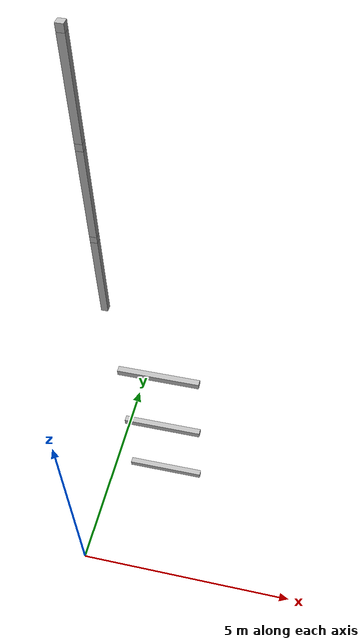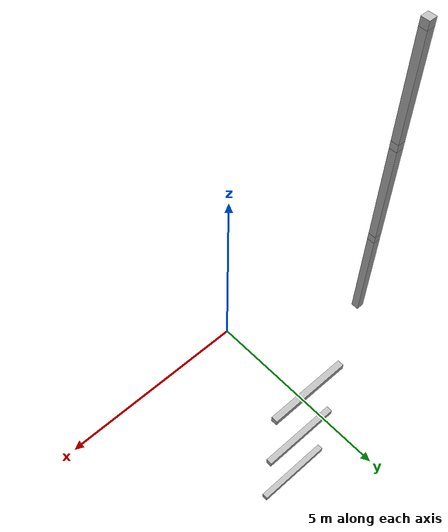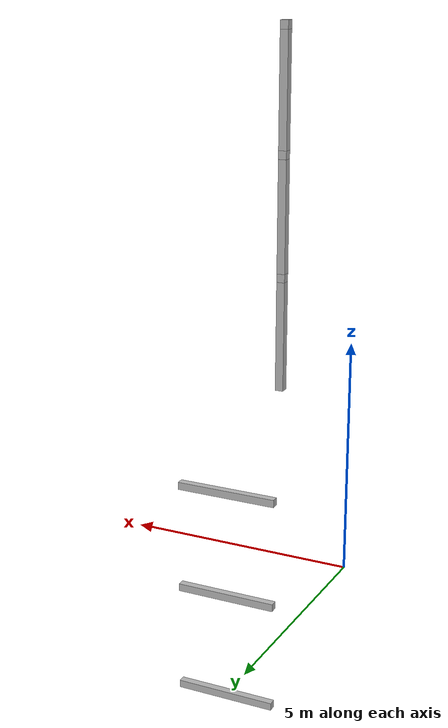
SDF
<sdf version="1.7">
 <world name="default">
  <model name="orthogonal_747_2.000.15_TS">
   <static>1</static>
   <link name="x_link_0_4_3">
    <inertial>
     <mass>1</mass>
     <inertia>
      <ixx>0.166667</ixx>
      <ixy>0</ixy>
      <ixz>0</ixz>
      <iyy>0.166667</iyy>
      <iyz>0</iyz>
      <izz>0.166667</izz>
     </inertia>
    </inertial>
    <pose>7.525 8.6 1.075 0 -0 0</pose>
    <visual name="visual_0">
     <laser_retro>687</laser_retro>
     <geometry><box><size>2 1e-06 0.15</size></box></geometry>
     <material>
      <script><name>Gazebo/Grey</name><uri>file://media/materials/scripts/gazebo.material</uri></script>
      <shader type="pixel"><normal_map>__default__</normal_map></shader>
      <ambient>0.678 0.498 0.659 1</ambient>
      <diffuse>0.7 0.7 0.7 1</diffuse>
      <specular>0.01 0.01 0.01 1</specular>
      <emissive>0 0 0 1</emissive>
     </material>
     <pose>0 -0.075 0 0 -0 0</pose>
     <transparency>1</transparency>
    </visual>
    <visual name="visual_1">
     <laser_retro>688</laser_retro>
     <geometry><box><size>2 1e-06 0.15</size></box></geometry>
     <material>
      <script><name>Gazebo/Grey</name><uri>file://media/materials/scripts/gazebo.material</uri></script>
      <shader type="pixel"><normal_map>__default__</normal_map></shader>
      <ambient>0.447 0.624 0.812 1</ambient>
      <diffuse>0.7 0.7 0.7 1</diffuse>
      <specular>0.01 0.01 0.01 1</specular>
      <emissive>0 0 0 1</emissive>
     </material>
     <pose>0 0.075 0 0 -0 0</pose>
     <transparency>1</transparency>
    </visual>
    <visual name="visual_2">
     <laser_retro>689</laser_retro>
     <geometry><box><size>2 0.15 1e-06</size></box></geometry>
     <material>
      <script><name>Gazebo/Grey</name><uri>file://media/materials/scripts/gazebo.material</uri></script>
      <shader type="pixel"><normal_map>__default__</normal_map></shader>
      <ambient>0.988 0.686 0.243 1</ambient>
      <diffuse>0.7 0.7 0.7 1</diffuse>
      <specular>0.01 0.01 0.01 1</specular>
      <emissive>0 0 0 1</emissive>
     </material>
     <pose>0 0 -0.075 0 -0 0</pose>
     <transparency>1</transparency>
    </visual>
    <visual name="visual_3">
     <laser_retro>690</laser_retro>
     <geometry><box><size>1e-06 0.15 0.15</size></box></geometry>
     <material>
      <script><name>Gazebo/Grey</name><uri>file://media/materials/scripts/gazebo.material</uri></script>
      <shader type="pixel"><normal_map>__default__</normal_map></shader>
      <ambient>0.988 0.914 0.31 1</ambient>
      <diffuse>0.7 0.7 0.7 1</diffuse>
      <specular>0.01 0.01 0.01 1</specular>
      <emissive>0 0 0 1</emissive>
     </material>
     <pose>1 0 0 0 -0 0</pose>
     <transparency>1</transparency>
    </visual>
    <visual name="visual_4">
     <laser_retro>691</laser_retro>
     <geometry><box><size>2 0.15 1e-06</size></box></geometry>
     <material>
      <script><name>Gazebo/Grey</name><uri>file://media/materials/scripts/gazebo.material</uri></script>
      <shader type="pixel"><normal_map>__default__</normal_map></shader>
      <ambient>0.937 0.161 0.161 1</ambient>
      <diffuse>0.7 0.7 0.7 1</diffuse>
      <specular>0.01 0.01 0.01 1</specular>
      <emissive>0 0 0 1</emissive>
     </material>
     <pose>0 0 0.075 0 -0 0</pose>
     <transparency>1</transparency>
    </visual>
    <visual name="visual_5">
     <laser_retro>692</laser_retro>
     <geometry><box><size>1e-06 0.15 0.15</size></box></geometry>
     <material>
      <script><name>Gazebo/Grey</name><uri>file://media/materials/scripts/gazebo.material</uri></script>
      <shader type="pixel"><normal_map>__default__</normal_map></shader>
      <ambient>0.541 0.886 0.204 1</ambient>
      <diffuse>0.7 0.7 0.7 1</diffuse>
      <specular>0.01 0.01 0.01 1</specular>
      <emissive>0 0 0 1</emissive>
     </material>
     <pose>-1 0 0 0 -0 0</pose>
     <transparency>1</transparency>
    </visual>
    <visual name="visual_texture">
     <geometry><box><size>1.9998 0.149985 0.149985</size></box></geometry>
     <material>
      <script>
       <uri>model://BASE_MODELS/simple_block_v2_textured/materials/scripts</uri>
       <uri>model://BASE_MODELS/simple_block_v2_textured/materials/textures</uri>
       <name>metal</name>
      </script>
     </material>
     <laser_retro>693</laser_retro>
    </visual>
    <collision name="collision">
     <geometry><box><size>2 0.15 0.15</size></box></geometry>
     <surface>
      <friction>
       <ode><mu>1</mu><mu2>1</mu2><fdir1>0 0 0</fdir1><slip1>0</slip1><slip2>0</slip2></ode>
       <torsional>
        <coefficient>1</coefficient>
        <patch_radius>0</patch_radius>
        <surface_radius>0</surface_radius>
        <use_patch_radius>1</use_patch_radius>
        <ode><slip>0</slip></ode>
       </torsional>
      </friction>
      <bounce><restitution_coefficient>0</restitution_coefficient><threshold>1e+06</threshold></bounce>
      <contact>
       <collide_without_contact>0</collide_without_contact>
       <collide_without_contact_bitmask>1</collide_without_contact_bitmask>
       <collide_bitmask>1</collide_bitmask>
       <ode>
        <soft_cfm>0</soft_cfm>
        <soft_erp>0.2</soft_erp>
        <kp>1e+13</kp>
        <kd>1</kd>
        <max_vel>0.01</max_vel>
        <min_depth>0</min_depth>
       </ode>
       <bullet>
        <split_impulse>1</split_impulse>
        <split_impulse_penetration_threshold>-0.01</split_impulse_penetration_threshold>
        <soft_cfm>0</soft_cfm>
        <soft_erp>0.2</soft_erp>
        <kp>1e+13</kp>
        <kd>1</kd>
       </bullet>
      </contact>
     </surface>
    </collision>
   </link>
   <link name="x_link_1_4_3">
    <inertial>
     <mass>1</mass>
     <inertia>
      <ixx>0.166667</ixx>
      <ixy>0</ixy>
      <ixz>0</ixz>
      <iyy>0.166667</iyy>
      <iyz>0</iyz>
      <izz>0.166667</izz>
     </inertia>
    </inertial>
    <pose>7.525 8.6 3.225 0 -0 0</pose>
    <visual name="visual_0">
     <laser_retro>1555</laser_retro>
     <geometry><box><size>2 1e-06 0.15</size></box></geometry>
     <material>
      <script><name>Gazebo/Grey</name><uri>file://media/materials/scripts/gazebo.material</uri></script>
      <shader type="pixel"><normal_map>__default__</normal_map></shader>
      <ambient>0.678 0.498 0.659 1</ambient>
      <diffuse>0.7 0.7 0.7 1</diffuse>
      <specular>0.01 0.01 0.01 1</specular>
      <emissive>0 0 0 1</emissive>
     </material>
     <pose>0 -0.075 0 0 -0 0</pose>
     <transparency>1</transparency>
    </visual>
    <visual name="visual_1">
     <laser_retro>1556</laser_retro>
     <geometry><box><size>2 1e-06 0.15</size></box></geometry>
     <material>
      <script><name>Gazebo/Grey</name><uri>file://media/materials/scripts/gazebo.material</uri></script>
      <shader type="pixel"><normal_map>__default__</normal_map></shader>
      <ambient>0.447 0.624 0.812 1</ambient>
      <diffuse>0.7 0.7 0.7 1</diffuse>
      <specular>0.01 0.01 0.01 1</specular>
      <emissive>0 0 0 1</emissive>
     </material>
     <pose>0 0.075 0 0 -0 0</pose>
     <transparency>1</transparency>
    </visual>
    <visual name="visual_2">
     <laser_retro>1557</laser_retro>
     <geometry><box><size>2 0.15 1e-06</size></box></geometry>
     <material>
      <script><name>Gazebo/Grey</name><uri>file://media/materials/scripts/gazebo.material</uri></script>
      <shader type="pixel"><normal_map>__default__</normal_map></shader>
      <ambient>0.988 0.686 0.243 1</ambient>
      <diffuse>0.7 0.7 0.7 1</diffuse>
      <specular>0.01 0.01 0.01 1</specular>
      <emissive>0 0 0 1</emissive>
     </material>
     <pose>0 0 -0.075 0 -0 0</pose>
     <transparency>1</transparency>
    </visual>
    <visual name="visual_3">
     <laser_retro>1558</laser_retro>
     <geometry><box><size>1e-06 0.15 0.15</size></box></geometry>
     <material>
      <script><name>Gazebo/Grey</name><uri>file://media/materials/scripts/gazebo.material</uri></script>
      <shader type="pixel"><normal_map>__default__</normal_map></shader>
      <ambient>0.988 0.914 0.31 1</ambient>
      <diffuse>0.7 0.7 0.7 1</diffuse>
      <specular>0.01 0.01 0.01 1</specular>
      <emissive>0 0 0 1</emissive>
     </material>
     <pose>1 0 0 0 -0 0</pose>
     <transparency>1</transparency>
    </visual>
    <visual name="visual_4">
     <laser_retro>1559</laser_retro>
     <geometry><box><size>2 0.15 1e-06</size></box></geometry>
     <material>
      <script><name>Gazebo/Grey</name><uri>file://media/materials/scripts/gazebo.material</uri></script>
      <shader type="pixel"><normal_map>__default__</normal_map></shader>
      <ambient>0.937 0.161 0.161 1</ambient>
      <diffuse>0.7 0.7 0.7 1</diffuse>
      <specular>0.01 0.01 0.01 1</specular>
      <emissive>0 0 0 1</emissive>
     </material>
     <pose>0 0 0.075 0 -0 0</pose>
     <transparency>1</transparency>
    </visual>
    <visual name="visual_5">
     <laser_retro>1560</laser_retro>
     <geometry><box><size>1e-06 0.15 0.15</size></box></geometry>
     <material>
      <script><name>Gazebo/Grey</name><uri>file://media/materials/scripts/gazebo.material</uri></script>
      <shader type="pixel"><normal_map>__default__</normal_map></shader>
      <ambient>0.541 0.886 0.204 1</ambient>
      <diffuse>0.7 0.7 0.7 1</diffuse>
      <specular>0.01 0.01 0.01 1</specular>
      <emissive>0 0 0 1</emissive>
     </material>
     <pose>-1 0 0 0 -0 0</pose>
     <transparency>1</transparency>
    </visual>
    <visual name="visual_texture">
     <geometry><box><size>1.9998 0.149985 0.149985</size></box></geometry>
     <material>
      <script>
       <uri>model://BASE_MODELS/simple_block_v2_textured/materials/scripts</uri>
       <uri>model://BASE_MODELS/simple_block_v2_textured/materials/textures</uri>
       <name>metal</name>
      </script>
     </material>
     <laser_retro>1561</laser_retro>
    </visual>
    <collision name="collision">
     <geometry><box><size>2 0.15 0.15</size></box></geometry>
     <surface>
      <friction>
       <ode><mu>1</mu><mu2>1</mu2><fdir1>0 0 0</fdir1><slip1>0</slip1><slip2>0</slip2></ode>
       <torsional>
        <coefficient>1</coefficient>
        <patch_radius>0</patch_radius>
        <surface_radius>0</surface_radius>
        <use_patch_radius>1</use_patch_radius>
        <ode><slip>0</slip></ode>
       </torsional>
      </friction>
      <bounce><restitution_coefficient>0</restitution_coefficient><threshold>1e+06</threshold></bounce>
      <contact>
       <collide_without_contact>0</collide_without_contact>
       <collide_without_contact_bitmask>1</collide_without_contact_bitmask>
       <collide_bitmask>1</collide_bitmask>
       <ode>
        <soft_cfm>0</soft_cfm>
        <soft_erp>0.2</soft_erp>
        <kp>1e+13</kp>
        <kd>1</kd>
        <max_vel>0.01</max_vel>
        <min_depth>0</min_depth>
       </ode>
       <bullet>
        <split_impulse>1</split_impulse>
        <split_impulse_penetration_threshold>-0.01</split_impulse_penetration_threshold>
        <soft_cfm>0</soft_cfm>
        <soft_erp>0.2</soft_erp>
        <kp>1e+13</kp>
        <kd>1</kd>
       </bullet>
      </contact>
     </surface>
    </collision>
   </link>
   <link name="x_link_2_4_3">
    <inertial>
     <mass>1</mass>
     <inertia>
      <ixx>0.166667</ixx>
      <ixy>0</ixy>
      <ixz>0</ixz>
      <iyy>0.166667</iyy>
      <iyz>0</iyz>
      <izz>0.166667</izz>
     </inertia>
    </inertial>
    <pose>7.525 8.6 5.375 0 -0 0</pose>
    <visual name="visual_0">
     <laser_retro>2458</laser_retro>
     <geometry><box><size>2 1e-06 0.15</size></box></geometry>
     <material>
      <script><name>Gazebo/Grey</name><uri>file://media/materials/scripts/gazebo.material</uri></script>
      <shader type="pixel"><normal_map>__default__</normal_map></shader>
      <ambient>0.678 0.498 0.659 1</ambient>
      <diffuse>0.7 0.7 0.7 1</diffuse>
      <specular>0.01 0.01 0.01 1</specular>
      <emissive>0 0 0 1</emissive>
     </material>
     <pose>0 -0.075 0 0 -0 0</pose>
     <transparency>1</transparency>
    </visual>
    <visual name="visual_1">
     <laser_retro>2459</laser_retro>
     <geometry><box><size>2 1e-06 0.15</size></box></geometry>
     <material>
      <script><name>Gazebo/Grey</name><uri>file://media/materials/scripts/gazebo.material</uri></script>
      <shader type="pixel"><normal_map>__default__</normal_map></shader>
      <ambient>0.447 0.624 0.812 1</ambient>
      <diffuse>0.7 0.7 0.7 1</diffuse>
      <specular>0.01 0.01 0.01 1</specular>
      <emissive>0 0 0 1</emissive>
     </material>
     <pose>0 0.075 0 0 -0 0</pose>
     <transparency>1</transparency>
    </visual>
    <visual name="visual_2">
     <laser_retro>2460</laser_retro>
     <geometry><box><size>2 0.15 1e-06</size></box></geometry>
     <material>
      <script><name>Gazebo/Grey</name><uri>file://media/materials/scripts/gazebo.material</uri></script>
      <shader type="pixel"><normal_map>__default__</normal_map></shader>
      <ambient>0.988 0.686 0.243 1</ambient>
      <diffuse>0.7 0.7 0.7 1</diffuse>
      <specular>0.01 0.01 0.01 1</specular>
      <emissive>0 0 0 1</emissive>
     </material>
     <pose>0 0 -0.075 0 -0 0</pose>
     <transparency>1</transparency>
    </visual>
    <visual name="visual_3">
     <laser_retro>2461</laser_retro>
     <geometry><box><size>1e-06 0.15 0.15</size></box></geometry>
     <material>
      <script><name>Gazebo/Grey</name><uri>file://media/materials/scripts/gazebo.material</uri></script>
      <shader type="pixel"><normal_map>__default__</normal_map></shader>
      <ambient>0.988 0.914 0.31 1</ambient>
      <diffuse>0.7 0.7 0.7 1</diffuse>
      <specular>0.01 0.01 0.01 1</specular>
      <emissive>0 0 0 1</emissive>
     </material>
     <pose>1 0 0 0 -0 0</pose>
     <transparency>1</transparency>
    </visual>
    <visual name="visual_4">
     <laser_retro>2462</laser_retro>
     <geometry><box><size>2 0.15 1e-06</size></box></geometry>
     <material>
      <script><name>Gazebo/Grey</name><uri>file://media/materials/scripts/gazebo.material</uri></script>
      <shader type="pixel"><normal_map>__default__</normal_map></shader>
      <ambient>0.937 0.161 0.161 1</ambient>
      <diffuse>0.7 0.7 0.7 1</diffuse>
      <specular>0.01 0.01 0.01 1</specular>
      <emissive>0 0 0 1</emissive>
     </material>
     <pose>0 0 0.075 0 -0 0</pose>
     <transparency>1</transparency>
    </visual>
    <visual name="visual_5">
     <laser_retro>2463</laser_retro>
     <geometry><box><size>1e-06 0.15 0.15</size></box></geometry>
     <material>
      <script><name>Gazebo/Grey</name><uri>file://media/materials/scripts/gazebo.material</uri></script>
      <shader type="pixel"><normal_map>__default__</normal_map></shader>
      <ambient>0.541 0.886 0.204 1</ambient>
      <diffuse>0.7 0.7 0.7 1</diffuse>
      <specular>0.01 0.01 0.01 1</specular>
      <emissive>0 0 0 1</emissive>
     </material>
     <pose>-1 0 0 0 -0 0</pose>
     <transparency>1</transparency>
    </visual>
    <visual name="visual_texture">
     <geometry><box><size>1.9998 0.149985 0.149985</size></box></geometry>
     <material>
      <script>
       <uri>model://BASE_MODELS/simple_block_v2_textured/materials/scripts</uri>
       <uri>model://BASE_MODELS/simple_block_v2_textured/materials/textures</uri>
       <name>metal</name>
      </script>
     </material>
     <laser_retro>2464</laser_retro>
    </visual>
    <collision name="collision">
     <geometry><box><size>2 0.15 0.15</size></box></geometry>
     <surface>
      <friction>
       <ode><mu>1</mu><mu2>1</mu2><fdir1>0 0 0</fdir1><slip1>0</slip1><slip2>0</slip2></ode>
       <torsional>
        <coefficient>1</coefficient>
        <patch_radius>0</patch_radius>
        <surface_radius>0</surface_radius>
        <use_patch_radius>1</use_patch_radius>
        <ode><slip>0</slip></ode>
       </torsional>
      </friction>
      <bounce><restitution_coefficient>0</restitution_coefficient><threshold>1e+06</threshold></bounce>
      <contact>
       <collide_without_contact>0</collide_without_contact>
       <collide_without_contact_bitmask>1</collide_without_contact_bitmask>
       <collide_bitmask>1</collide_bitmask>
       <ode>
        <soft_cfm>0</soft_cfm>
        <soft_erp>0.2</soft_erp>
        <kp>1e+13</kp>
        <kd>1</kd>
        <max_vel>0.01</max_vel>
        <min_depth>0</min_depth>
       </ode>
       <bullet>
        <split_impulse>1</split_impulse>
        <split_impulse_penetration_threshold>-0.01</split_impulse_penetration_threshold>
        <soft_cfm>0</soft_cfm>
        <soft_erp>0.2</soft_erp>
        <kp>1e+13</kp>
        <kd>1</kd>
       </bullet>
      </contact>
     </surface>
    </collision>
   </link>
   <link name="u_link_4_4_3">
    <inertial>
     <mass>1</mass>
     <inertia>
      <ixx>0.166667</ixx>
      <ixy>0</ixy>
      <ixz>0</ixz>
      <iyy>0.166667</iyy>
      <iyz>0</iyz>
      <izz>0.166667</izz>
     </inertia>
    </inertial>
    <pose>6.45 8.6 9.675 0 -0 0</pose>
    <visual name="visual_0">
     <laser_retro>4271</laser_retro>
     <geometry><box><size>0.15 1e-06 0.15</size></box></geometry>
     <material>
      <script><name>Gazebo/Grey</name><uri>file://media/materials/scripts/gazebo.material</uri></script>
      <shader type="pixel"><normal_map>__default__</normal_map></shader>
      <ambient>0.678 0.498 0.659 1</ambient>
      <diffuse>0.7 0.7 0.7 1</diffuse>
      <specular>0.01 0.01 0.01 1</specular>
      <emissive>0 0 0 1</emissive>
     </material>
     <pose>0 -0.075 0 0 -0 0</pose>
     <transparency>1</transparency>
    </visual>
    <visual name="visual_1">
     <laser_retro>4272</laser_retro>
     <geometry><box><size>0.15 1e-06 0.15</size></box></geometry>
     <material>
      <script><name>Gazebo/Grey</name><uri>file://media/materials/scripts/gazebo.material</uri></script>
      <shader type="pixel"><normal_map>__default__</normal_map></shader>
      <ambient>0.447 0.624 0.812 1</ambient>
      <diffuse>0.7 0.7 0.7 1</diffuse>
      <specular>0.01 0.01 0.01 1</specular>
      <emissive>0 0 0 1</emissive>
     </material>
     <pose>0 0.075 0 0 -0 0</pose>
     <transparency>1</transparency>
    </visual>
    <visual name="visual_2">
     <laser_retro>4273</laser_retro>
     <geometry><box><size>0.15 0.15 1e-06</size></box></geometry>
     <material>
      <script><name>Gazebo/Grey</name><uri>file://media/materials/scripts/gazebo.material</uri></script>
      <shader type="pixel"><normal_map>__default__</normal_map></shader>
      <ambient>0.988 0.686 0.243 1</ambient>
      <diffuse>0.7 0.7 0.7 1</diffuse>
      <specular>0.01 0.01 0.01 1</specular>
      <emissive>0 0 0 1</emissive>
     </material>
     <pose>0 0 -0.075 0 -0 0</pose>
     <transparency>1</transparency>
    </visual>
    <visual name="visual_3">
     <laser_retro>4274</laser_retro>
     <geometry><box><size>1e-06 0.15 0.15</size></box></geometry>
     <material>
      <script><name>Gazebo/Grey</name><uri>file://media/materials/scripts/gazebo.material</uri></script>
      <shader type="pixel"><normal_map>__default__</normal_map></shader>
      <ambient>0.988 0.914 0.31 1</ambient>
      <diffuse>0.7 0.7 0.7 1</diffuse>
      <specular>0.01 0.01 0.01 1</specular>
      <emissive>0 0 0 1</emissive>
     </material>
     <pose>0.075 0 0 0 -0 0</pose>
     <transparency>1</transparency>
    </visual>
    <visual name="visual_4">
     <laser_retro>4275</laser_retro>
     <geometry><box><size>0.15 0.15 1e-06</size></box></geometry>
     <material>
      <script><name>Gazebo/Grey</name><uri>file://media/materials/scripts/gazebo.material</uri></script>
      <shader type="pixel"><normal_map>__default__</normal_map></shader>
      <ambient>0.937 0.161 0.161 1</ambient>
      <diffuse>0.7 0.7 0.7 1</diffuse>
      <specular>0.01 0.01 0.01 1</specular>
      <emissive>0 0 0 1</emissive>
     </material>
     <pose>0 0 0.075 0 -0 0</pose>
     <transparency>1</transparency>
    </visual>
    <visual name="visual_5">
     <laser_retro>4276</laser_retro>
     <geometry><box><size>1e-06 0.15 0.15</size></box></geometry>
     <material>
      <script><name>Gazebo/Grey</name><uri>file://media/materials/scripts/gazebo.material</uri></script>
      <shader type="pixel"><normal_map>__default__</normal_map></shader>
      <ambient>0.541 0.886 0.204 1</ambient>
      <diffuse>0.7 0.7 0.7 1</diffuse>
      <specular>0.01 0.01 0.01 1</specular>
      <emissive>0 0 0 1</emissive>
     </material>
     <pose>-0.075 0 0 0 -0 0</pose>
     <transparency>1</transparency>
    </visual>
    <visual name="visual_texture">
     <geometry><box><size>0.149985 0.149985 0.149985</size></box></geometry>
     <material>
      <script>
       <uri>model://BASE_MODELS/simple_block_v2_textured/materials/scripts</uri>
       <uri>model://BASE_MODELS/simple_block_v2_textured/materials/textures</uri>
       <name>metal</name>
      </script>
     </material>
     <laser_retro>4277</laser_retro>
    </visual>
    <collision name="collision">
     <geometry><box><size>0.15 0.15 0.15</size></box></geometry>
     <surface>
      <friction>
       <ode><mu>1</mu><mu2>1</mu2><fdir1>0 0 0</fdir1><slip1>0</slip1><slip2>0</slip2></ode>
       <torsional>
        <coefficient>1</coefficient>
        <patch_radius>0</patch_radius>
        <surface_radius>0</surface_radius>
        <use_patch_radius>1</use_patch_radius>
        <ode><slip>0</slip></ode>
       </torsional>
      </friction>
      <bounce><restitution_coefficient>0</restitution_coefficient><threshold>1e+06</threshold></bounce>
      <contact>
       <collide_without_contact>0</collide_without_contact>
       <collide_without_contact_bitmask>1</collide_without_contact_bitmask>
       <collide_bitmask>1</collide_bitmask>
       <ode>
        <soft_cfm>0</soft_cfm>
        <soft_erp>0.2</soft_erp>
        <kp>1e+13</kp>
        <kd>1</kd>
        <max_vel>0.01</max_vel>
        <min_depth>0</min_depth>
       </ode>
       <bullet>
        <split_impulse>1</split_impulse>
        <split_impulse_penetration_threshold>-0.01</split_impulse_penetration_threshold>
        <soft_cfm>0</soft_cfm>
        <soft_erp>0.2</soft_erp>
        <kp>1e+13</kp>
        <kd>1</kd>
       </bullet>
      </contact>
     </surface>
    </collision>
   </link>
   <link name="z_link_4_4_3">
    <inertial>
     <mass>1</mass>
     <inertia>
      <ixx>0.166667</ixx>
      <ixy>0</ixy>
      <ixz>0</ixz>
      <iyy>0.166667</iyy>
      <iyz>0</iyz>
      <izz>0.166667</izz>
     </inertia>
    </inertial>
    <pose>6.45 8.6 8.6 0 -0 0</pose>
    <visual name="visual_0">
     <laser_retro>4278</laser_retro>
     <geometry><box><size>0.15 1e-06 2</size></box></geometry>
     <material>
      <script><name>Gazebo/Grey</name><uri>file://media/materials/scripts/gazebo.material</uri></script>
      <shader type="pixel"><normal_map>__default__</normal_map></shader>
      <ambient>0.678 0.498 0.659 1</ambient>
      <diffuse>0.7 0.7 0.7 1</diffuse>
      <specular>0.01 0.01 0.01 1</specular>
      <emissive>0 0 0 1</emissive>
     </material>
     <pose>0 -0.075 0 0 -0 0</pose>
     <transparency>1</transparency>
    </visual>
    <visual name="visual_1">
     <laser_retro>4279</laser_retro>
     <geometry><box><size>0.15 1e-06 2</size></box></geometry>
     <material>
      <script><name>Gazebo/Grey</name><uri>file://media/materials/scripts/gazebo.material</uri></script>
      <shader type="pixel"><normal_map>__default__</normal_map></shader>
      <ambient>0.447 0.624 0.812 1</ambient>
      <diffuse>0.7 0.7 0.7 1</diffuse>
      <specular>0.01 0.01 0.01 1</specular>
      <emissive>0 0 0 1</emissive>
     </material>
     <pose>0 0.075 0 0 -0 0</pose>
     <transparency>1</transparency>
    </visual>
    <visual name="visual_2">
     <laser_retro>4280</laser_retro>
     <geometry><box><size>0.15 0.15 1e-06</size></box></geometry>
     <material>
      <script><name>Gazebo/Grey</name><uri>file://media/materials/scripts/gazebo.material</uri></script>
      <shader type="pixel"><normal_map>__default__</normal_map></shader>
      <ambient>0.988 0.686 0.243 1</ambient>
      <diffuse>0.7 0.7 0.7 1</diffuse>
      <specular>0.01 0.01 0.01 1</specular>
      <emissive>0 0 0 1</emissive>
     </material>
     <pose>0 0 -1 0 -0 0</pose>
     <transparency>1</transparency>
    </visual>
    <visual name="visual_3">
     <laser_retro>4281</laser_retro>
     <geometry><box><size>1e-06 0.15 2</size></box></geometry>
     <material>
      <script><name>Gazebo/Grey</name><uri>file://media/materials/scripts/gazebo.material</uri></script>
      <shader type="pixel"><normal_map>__default__</normal_map></shader>
      <ambient>0.988 0.914 0.31 1</ambient>
      <diffuse>0.7 0.7 0.7 1</diffuse>
      <specular>0.01 0.01 0.01 1</specular>
      <emissive>0 0 0 1</emissive>
     </material>
     <pose>0.075 0 0 0 -0 0</pose>
     <transparency>1</transparency>
    </visual>
    <visual name="visual_4">
     <laser_retro>4282</laser_retro>
     <geometry><box><size>0.15 0.15 1e-06</size></box></geometry>
     <material>
      <script><name>Gazebo/Grey</name><uri>file://media/materials/scripts/gazebo.material</uri></script>
      <shader type="pixel"><normal_map>__default__</normal_map></shader>
      <ambient>0.937 0.161 0.161 1</ambient>
      <diffuse>0.7 0.7 0.7 1</diffuse>
      <specular>0.01 0.01 0.01 1</specular>
      <emissive>0 0 0 1</emissive>
     </material>
     <pose>0 0 1 0 -0 0</pose>
     <transparency>1</transparency>
    </visual>
    <visual name="visual_5">
     <laser_retro>4283</laser_retro>
     <geometry><box><size>1e-06 0.15 2</size></box></geometry>
     <material>
      <script><name>Gazebo/Grey</name><uri>file://media/materials/scripts/gazebo.material</uri></script>
      <shader type="pixel"><normal_map>__default__</normal_map></shader>
      <ambient>0.541 0.886 0.204 1</ambient>
      <diffuse>0.7 0.7 0.7 1</diffuse>
      <specular>0.01 0.01 0.01 1</specular>
      <emissive>0 0 0 1</emissive>
     </material>
     <pose>-0.075 0 0 0 -0 0</pose>
     <transparency>1</transparency>
    </visual>
    <visual name="visual_texture">
     <geometry><box><size>0.149985 0.149985 1.9998</size></box></geometry>
     <material>
      <script>
       <uri>model://BASE_MODELS/simple_block_v2_textured/materials/scripts</uri>
       <uri>model://BASE_MODELS/simple_block_v2_textured/materials/textures</uri>
       <name>metal</name>
      </script>
     </material>
     <laser_retro>4284</laser_retro>
    </visual>
    <collision name="collision">
     <geometry><box><size>0.15 0.15 2</size></box></geometry>
     <surface>
      <friction>
       <ode><mu>1</mu><mu2>1</mu2><fdir1>0 0 0</fdir1><slip1>0</slip1><slip2>0</slip2></ode>
       <torsional>
        <coefficient>1</coefficient>
        <patch_radius>0</patch_radius>
        <surface_radius>0</surface_radius>
        <use_patch_radius>1</use_patch_radius>
        <ode><slip>0</slip></ode>
       </torsional>
      </friction>
      <bounce><restitution_coefficient>0</restitution_coefficient><threshold>1e+06</threshold></bounce>
      <contact>
       <collide_without_contact>0</collide_without_contact>
       <collide_without_contact_bitmask>1</collide_without_contact_bitmask>
       <collide_bitmask>1</collide_bitmask>
       <ode>
        <soft_cfm>0</soft_cfm>
        <soft_erp>0.2</soft_erp>
        <kp>1e+13</kp>
        <kd>1</kd>
        <max_vel>0.01</max_vel>
        <min_depth>0</min_depth>
       </ode>
       <bullet>
        <split_impulse>1</split_impulse>
        <split_impulse_penetration_threshold>-0.01</split_impulse_penetration_threshold>
        <soft_cfm>0</soft_cfm>
        <soft_erp>0.2</soft_erp>
        <kp>1e+13</kp>
        <kd>1</kd>
       </bullet>
      </contact>
     </surface>
    </collision>
   </link>
   <link name="u_link_5_4_3">
    <inertial>
     <mass>1</mass>
     <inertia>
      <ixx>0.166667</ixx>
      <ixy>0</ixy>
      <ixz>0</ixz>
      <iyy>0.166667</iyy>
      <iyz>0</iyz>
      <izz>0.166667</izz>
     </inertia>
    </inertial>
    <pose>6.45 8.6 11.825 0 -0 0</pose>
    <visual name="visual_0">
     <laser_retro>5174</laser_retro>
     <geometry><box><size>0.15 1e-06 0.15</size></box></geometry>
     <material>
      <script><name>Gazebo/Grey</name><uri>file://media/materials/scripts/gazebo.material</uri></script>
      <shader type="pixel"><normal_map>__default__</normal_map></shader>
      <ambient>0.678 0.498 0.659 1</ambient>
      <diffuse>0.7 0.7 0.7 1</diffuse>
      <specular>0.01 0.01 0.01 1</specular>
      <emissive>0 0 0 1</emissive>
     </material>
     <pose>0 -0.075 0 0 -0 0</pose>
     <transparency>1</transparency>
    </visual>
    <visual name="visual_1">
     <laser_retro>5175</laser_retro>
     <geometry><box><size>0.15 1e-06 0.15</size></box></geometry>
     <material>
      <script><name>Gazebo/Grey</name><uri>file://media/materials/scripts/gazebo.material</uri></script>
      <shader type="pixel"><normal_map>__default__</normal_map></shader>
      <ambient>0.447 0.624 0.812 1</ambient>
      <diffuse>0.7 0.7 0.7 1</diffuse>
      <specular>0.01 0.01 0.01 1</specular>
      <emissive>0 0 0 1</emissive>
     </material>
     <pose>0 0.075 0 0 -0 0</pose>
     <transparency>1</transparency>
    </visual>
    <visual name="visual_2">
     <laser_retro>5176</laser_retro>
     <geometry><box><size>0.15 0.15 1e-06</size></box></geometry>
     <material>
      <script><name>Gazebo/Grey</name><uri>file://media/materials/scripts/gazebo.material</uri></script>
      <shader type="pixel"><normal_map>__default__</normal_map></shader>
      <ambient>0.988 0.686 0.243 1</ambient>
      <diffuse>0.7 0.7 0.7 1</diffuse>
      <specular>0.01 0.01 0.01 1</specular>
      <emissive>0 0 0 1</emissive>
     </material>
     <pose>0 0 -0.075 0 -0 0</pose>
     <transparency>1</transparency>
    </visual>
    <visual name="visual_3">
     <laser_retro>5177</laser_retro>
     <geometry><box><size>1e-06 0.15 0.15</size></box></geometry>
     <material>
      <script><name>Gazebo/Grey</name><uri>file://media/materials/scripts/gazebo.material</uri></script>
      <shader type="pixel"><normal_map>__default__</normal_map></shader>
      <ambient>0.988 0.914 0.31 1</ambient>
      <diffuse>0.7 0.7 0.7 1</diffuse>
      <specular>0.01 0.01 0.01 1</specular>
      <emissive>0 0 0 1</emissive>
     </material>
     <pose>0.075 0 0 0 -0 0</pose>
     <transparency>1</transparency>
    </visual>
    <visual name="visual_4">
     <laser_retro>5178</laser_retro>
     <geometry><box><size>0.15 0.15 1e-06</size></box></geometry>
     <material>
      <script><name>Gazebo/Grey</name><uri>file://media/materials/scripts/gazebo.material</uri></script>
      <shader type="pixel"><normal_map>__default__</normal_map></shader>
      <ambient>0.937 0.161 0.161 1</ambient>
      <diffuse>0.7 0.7 0.7 1</diffuse>
      <specular>0.01 0.01 0.01 1</specular>
      <emissive>0 0 0 1</emissive>
     </material>
     <pose>0 0 0.075 0 -0 0</pose>
     <transparency>1</transparency>
    </visual>
    <visual name="visual_5">
     <laser_retro>5179</laser_retro>
     <geometry><box><size>1e-06 0.15 0.15</size></box></geometry>
     <material>
      <script><name>Gazebo/Grey</name><uri>file://media/materials/scripts/gazebo.material</uri></script>
      <shader type="pixel"><normal_map>__default__</normal_map></shader>
      <ambient>0.541 0.886 0.204 1</ambient>
      <diffuse>0.7 0.7 0.7 1</diffuse>
      <specular>0.01 0.01 0.01 1</specular>
      <emissive>0 0 0 1</emissive>
     </material>
     <pose>-0.075 0 0 0 -0 0</pose>
     <transparency>1</transparency>
    </visual>
    <visual name="visual_texture">
     <geometry><box><size>0.149985 0.149985 0.149985</size></box></geometry>
     <material>
      <script>
       <uri>model://BASE_MODELS/simple_block_v2_textured/materials/scripts</uri>
       <uri>model://BASE_MODELS/simple_block_v2_textured/materials/textures</uri>
       <name>metal</name>
      </script>
     </material>
     <laser_retro>5180</laser_retro>
    </visual>
    <collision name="collision">
     <geometry><box><size>0.15 0.15 0.15</size></box></geometry>
     <surface>
      <friction>
       <ode><mu>1</mu><mu2>1</mu2><fdir1>0 0 0</fdir1><slip1>0</slip1><slip2>0</slip2></ode>
       <torsional>
        <coefficient>1</coefficient>
        <patch_radius>0</patch_radius>
        <surface_radius>0</surface_radius>
        <use_patch_radius>1</use_patch_radius>
        <ode><slip>0</slip></ode>
       </torsional>
      </friction>
      <bounce><restitution_coefficient>0</restitution_coefficient><threshold>1e+06</threshold></bounce>
      <contact>
       <collide_without_contact>0</collide_without_contact>
       <collide_without_contact_bitmask>1</collide_without_contact_bitmask>
       <collide_bitmask>1</collide_bitmask>
       <ode>
        <soft_cfm>0</soft_cfm>
        <soft_erp>0.2</soft_erp>
        <kp>1e+13</kp>
        <kd>1</kd>
        <max_vel>0.01</max_vel>
        <min_depth>0</min_depth>
       </ode>
       <bullet>
        <split_impulse>1</split_impulse>
        <split_impulse_penetration_threshold>-0.01</split_impulse_penetration_threshold>
        <soft_cfm>0</soft_cfm>
        <soft_erp>0.2</soft_erp>
        <kp>1e+13</kp>
        <kd>1</kd>
       </bullet>
      </contact>
     </surface>
    </collision>
   </link>
   <link name="z_link_5_4_3">
    <inertial>
     <mass>1</mass>
     <inertia>
      <ixx>0.166667</ixx>
      <ixy>0</ixy>
      <ixz>0</ixz>
      <iyy>0.166667</iyy>
      <iyz>0</iyz>
      <izz>0.166667</izz>
     </inertia>
    </inertial>
    <pose>6.45 8.6 10.75 0 -0 0</pose>
    <visual name="visual_0">
     <laser_retro>5181</laser_retro>
     <geometry><box><size>0.15 1e-06 2</size></box></geometry>
     <material>
      <script><name>Gazebo/Grey</name><uri>file://media/materials/scripts/gazebo.material</uri></script>
      <shader type="pixel"><normal_map>__default__</normal_map></shader>
      <ambient>0.678 0.498 0.659 1</ambient>
      <diffuse>0.7 0.7 0.7 1</diffuse>
      <specular>0.01 0.01 0.01 1</specular>
      <emissive>0 0 0 1</emissive>
     </material>
     <pose>0 -0.075 0 0 -0 0</pose>
     <transparency>1</transparency>
    </visual>
    <visual name="visual_1">
     <laser_retro>5182</laser_retro>
     <geometry><box><size>0.15 1e-06 2</size></box></geometry>
     <material>
      <script><name>Gazebo/Grey</name><uri>file://media/materials/scripts/gazebo.material</uri></script>
      <shader type="pixel"><normal_map>__default__</normal_map></shader>
      <ambient>0.447 0.624 0.812 1</ambient>
      <diffuse>0.7 0.7 0.7 1</diffuse>
      <specular>0.01 0.01 0.01 1</specular>
      <emissive>0 0 0 1</emissive>
     </material>
     <pose>0 0.075 0 0 -0 0</pose>
     <transparency>1</transparency>
    </visual>
    <visual name="visual_2">
     <laser_retro>5183</laser_retro>
     <geometry><box><size>0.15 0.15 1e-06</size></box></geometry>
     <material>
      <script><name>Gazebo/Grey</name><uri>file://media/materials/scripts/gazebo.material</uri></script>
      <shader type="pixel"><normal_map>__default__</normal_map></shader>
      <ambient>0.988 0.686 0.243 1</ambient>
      <diffuse>0.7 0.7 0.7 1</diffuse>
      <specular>0.01 0.01 0.01 1</specular>
      <emissive>0 0 0 1</emissive>
     </material>
     <pose>0 0 -1 0 -0 0</pose>
     <transparency>1</transparency>
    </visual>
    <visual name="visual_3">
     <laser_retro>5184</laser_retro>
     <geometry><box><size>1e-06 0.15 2</size></box></geometry>
     <material>
      <script><name>Gazebo/Grey</name><uri>file://media/materials/scripts/gazebo.material</uri></script>
      <shader type="pixel"><normal_map>__default__</normal_map></shader>
      <ambient>0.988 0.914 0.31 1</ambient>
      <diffuse>0.7 0.7 0.7 1</diffuse>
      <specular>0.01 0.01 0.01 1</specular>
      <emissive>0 0 0 1</emissive>
     </material>
     <pose>0.075 0 0 0 -0 0</pose>
     <transparency>1</transparency>
    </visual>
    <visual name="visual_4">
     <laser_retro>5185</laser_retro>
     <geometry><box><size>0.15 0.15 1e-06</size></box></geometry>
     <material>
      <script><name>Gazebo/Grey</name><uri>file://media/materials/scripts/gazebo.material</uri></script>
      <shader type="pixel"><normal_map>__default__</normal_map></shader>
      <ambient>0.937 0.161 0.161 1</ambient>
      <diffuse>0.7 0.7 0.7 1</diffuse>
      <specular>0.01 0.01 0.01 1</specular>
      <emissive>0 0 0 1</emissive>
     </material>
     <pose>0 0 1 0 -0 0</pose>
     <transparency>1</transparency>
    </visual>
    <visual name="visual_5">
     <laser_retro>5186</laser_retro>
     <geometry><box><size>1e-06 0.15 2</size></box></geometry>
     <material>
      <script><name>Gazebo/Grey</name><uri>file://media/materials/scripts/gazebo.material</uri></script>
      <shader type="pixel"><normal_map>__default__</normal_map></shader>
      <ambient>0.541 0.886 0.204 1</ambient>
      <diffuse>0.7 0.7 0.7 1</diffuse>
      <specular>0.01 0.01 0.01 1</specular>
      <emissive>0 0 0 1</emissive>
     </material>
     <pose>-0.075 0 0 0 -0 0</pose>
     <transparency>1</transparency>
    </visual>
    <visual name="visual_texture">
     <geometry><box><size>0.149985 0.149985 1.9998</size></box></geometry>
     <material>
      <script>
       <uri>model://BASE_MODELS/simple_block_v2_textured/materials/scripts</uri>
       <uri>model://BASE_MODELS/simple_block_v2_textured/materials/textures</uri>
       <name>metal</name>
      </script>
     </material>
     <laser_retro>5187</laser_retro>
    </visual>
    <collision name="collision">
     <geometry><box><size>0.15 0.15 2</size></box></geometry>
     <surface>
      <friction>
       <ode><mu>1</mu><mu2>1</mu2><fdir1>0 0 0</fdir1><slip1>0</slip1><slip2>0</slip2></ode>
       <torsional>
        <coefficient>1</coefficient>
        <patch_radius>0</patch_radius>
        <surface_radius>0</surface_radius>
        <use_patch_radius>1</use_patch_radius>
        <ode><slip>0</slip></ode>
       </torsional>
      </friction>
      <bounce><restitution_coefficient>0</restitution_coefficient><threshold>1e+06</threshold></bounce>
      <contact>
       <collide_without_contact>0</collide_without_contact>
       <collide_without_contact_bitmask>1</collide_without_contact_bitmask>
       <collide_bitmask>1</collide_bitmask>
       <ode>
        <soft_cfm>0</soft_cfm>
        <soft_erp>0.2</soft_erp>
        <kp>1e+13</kp>
        <kd>1</kd>
        <max_vel>0.01</max_vel>
        <min_depth>0</min_depth>
       </ode>
       <bullet>
        <split_impulse>1</split_impulse>
        <split_impulse_penetration_threshold>-0.01</split_impulse_penetration_threshold>
        <soft_cfm>0</soft_cfm>
        <soft_erp>0.2</soft_erp>
        <kp>1e+13</kp>
        <kd>1</kd>
       </bullet>
      </contact>
     </surface>
    </collision>
   </link>
   <link name="u_link_6_4_3">
    <inertial>
     <mass>1</mass>
     <inertia>
      <ixx>0.166667</ixx>
      <ixy>0</ixy>
      <ixz>0</ixz>
      <iyy>0.166667</iyy>
      <iyz>0</iyz>
      <izz>0.166667</izz>
     </inertia>
    </inertial>
    <pose>6.45 8.6 13.975 0 -0 0</pose>
    <visual name="visual_0">
     <laser_retro>6203</laser_retro>
     <geometry><box><size>0.15 1e-06 0.15</size></box></geometry>
     <material>
      <script><name>Gazebo/Grey</name><uri>file://media/materials/scripts/gazebo.material</uri></script>
      <shader type="pixel"><normal_map>__default__</normal_map></shader>
      <ambient>0.678 0.498 0.659 1</ambient>
      <diffuse>0.7 0.7 0.7 1</diffuse>
      <specular>0.01 0.01 0.01 1</specular>
      <emissive>0 0 0 1</emissive>
     </material>
     <pose>0 -0.075 0 0 -0 0</pose>
     <transparency>1</transparency>
    </visual>
    <visual name="visual_1">
     <laser_retro>6204</laser_retro>
     <geometry><box><size>0.15 1e-06 0.15</size></box></geometry>
     <material>
      <script><name>Gazebo/Grey</name><uri>file://media/materials/scripts/gazebo.material</uri></script>
      <shader type="pixel"><normal_map>__default__</normal_map></shader>
      <ambient>0.447 0.624 0.812 1</ambient>
      <diffuse>0.7 0.7 0.7 1</diffuse>
      <specular>0.01 0.01 0.01 1</specular>
      <emissive>0 0 0 1</emissive>
     </material>
     <pose>0 0.075 0 0 -0 0</pose>
     <transparency>1</transparency>
    </visual>
    <visual name="visual_2">
     <laser_retro>6205</laser_retro>
     <geometry><box><size>0.15 0.15 1e-06</size></box></geometry>
     <material>
      <script><name>Gazebo/Grey</name><uri>file://media/materials/scripts/gazebo.material</uri></script>
      <shader type="pixel"><normal_map>__default__</normal_map></shader>
      <ambient>0.988 0.686 0.243 1</ambient>
      <diffuse>0.7 0.7 0.7 1</diffuse>
      <specular>0.01 0.01 0.01 1</specular>
      <emissive>0 0 0 1</emissive>
     </material>
     <pose>0 0 -0.075 0 -0 0</pose>
     <transparency>1</transparency>
    </visual>
    <visual name="visual_3">
     <laser_retro>6206</laser_retro>
     <geometry><box><size>1e-06 0.15 0.15</size></box></geometry>
     <material>
      <script><name>Gazebo/Grey</name><uri>file://media/materials/scripts/gazebo.material</uri></script>
      <shader type="pixel"><normal_map>__default__</normal_map></shader>
      <ambient>0.988 0.914 0.31 1</ambient>
      <diffuse>0.7 0.7 0.7 1</diffuse>
      <specular>0.01 0.01 0.01 1</specular>
      <emissive>0 0 0 1</emissive>
     </material>
     <pose>0.075 0 0 0 -0 0</pose>
     <transparency>1</transparency>
    </visual>
    <visual name="visual_4">
     <laser_retro>6207</laser_retro>
     <geometry><box><size>0.15 0.15 1e-06</size></box></geometry>
     <material>
      <script><name>Gazebo/Grey</name><uri>file://media/materials/scripts/gazebo.material</uri></script>
      <shader type="pixel"><normal_map>__default__</normal_map></shader>
      <ambient>0.937 0.161 0.161 1</ambient>
      <diffuse>0.7 0.7 0.7 1</diffuse>
      <specular>0.01 0.01 0.01 1</specular>
      <emissive>0 0 0 1</emissive>
     </material>
     <pose>0 0 0.075 0 -0 0</pose>
     <transparency>1</transparency>
    </visual>
    <visual name="visual_5">
     <laser_retro>6208</laser_retro>
     <geometry><box><size>1e-06 0.15 0.15</size></box></geometry>
     <material>
      <script><name>Gazebo/Grey</name><uri>file://media/materials/scripts/gazebo.material</uri></script>
      <shader type="pixel"><normal_map>__default__</normal_map></shader>
      <ambient>0.541 0.886 0.204 1</ambient>
      <diffuse>0.7 0.7 0.7 1</diffuse>
      <specular>0.01 0.01 0.01 1</specular>
      <emissive>0 0 0 1</emissive>
     </material>
     <pose>-0.075 0 0 0 -0 0</pose>
     <transparency>1</transparency>
    </visual>
    <visual name="visual_texture">
     <geometry><box><size>0.149985 0.149985 0.149985</size></box></geometry>
     <material>
      <script>
       <uri>model://BASE_MODELS/simple_block_v2_textured/materials/scripts</uri>
       <uri>model://BASE_MODELS/simple_block_v2_textured/materials/textures</uri>
       <name>metal</name>
      </script>
     </material>
     <laser_retro>6209</laser_retro>
    </visual>
    <collision name="collision">
     <geometry><box><size>0.15 0.15 0.15</size></box></geometry>
     <surface>
      <friction>
       <ode><mu>1</mu><mu2>1</mu2><fdir1>0 0 0</fdir1><slip1>0</slip1><slip2>0</slip2></ode>
       <torsional>
        <coefficient>1</coefficient>
        <patch_radius>0</patch_radius>
        <surface_radius>0</surface_radius>
        <use_patch_radius>1</use_patch_radius>
        <ode><slip>0</slip></ode>
       </torsional>
      </friction>
      <bounce><restitution_coefficient>0</restitution_coefficient><threshold>1e+06</threshold></bounce>
      <contact>
       <collide_without_contact>0</collide_without_contact>
       <collide_without_contact_bitmask>1</collide_without_contact_bitmask>
       <collide_bitmask>1</collide_bitmask>
       <ode>
        <soft_cfm>0</soft_cfm>
        <soft_erp>0.2</soft_erp>
        <kp>1e+13</kp>
        <kd>1</kd>
        <max_vel>0.01</max_vel>
        <min_depth>0</min_depth>
       </ode>
       <bullet>
        <split_impulse>1</split_impulse>
        <split_impulse_penetration_threshold>-0.01</split_impulse_penetration_threshold>
        <soft_cfm>0</soft_cfm>
        <soft_erp>0.2</soft_erp>
        <kp>1e+13</kp>
        <kd>1</kd>
       </bullet>
      </contact>
     </surface>
    </collision>
   </link>
   <link name="z_link_6_4_3">
    <inertial>
     <mass>1</mass>
     <inertia>
      <ixx>0.166667</ixx>
      <ixy>0</ixy>
      <ixz>0</ixz>
      <iyy>0.166667</iyy>
      <iyz>0</iyz>
      <izz>0.166667</izz>
     </inertia>
    </inertial>
    <pose>6.45 8.6 12.9 0 -0 0</pose>
    <visual name="visual_0">
     <laser_retro>6210</laser_retro>
     <geometry><box><size>0.15 1e-06 2</size></box></geometry>
     <material>
      <script><name>Gazebo/Grey</name><uri>file://media/materials/scripts/gazebo.material</uri></script>
      <shader type="pixel"><normal_map>__default__</normal_map></shader>
      <ambient>0.678 0.498 0.659 1</ambient>
      <diffuse>0.7 0.7 0.7 1</diffuse>
      <specular>0.01 0.01 0.01 1</specular>
      <emissive>0 0 0 1</emissive>
     </material>
     <pose>0 -0.075 0 0 -0 0</pose>
     <transparency>1</transparency>
    </visual>
    <visual name="visual_1">
     <laser_retro>6211</laser_retro>
     <geometry><box><size>0.15 1e-06 2</size></box></geometry>
     <material>
      <script><name>Gazebo/Grey</name><uri>file://media/materials/scripts/gazebo.material</uri></script>
      <shader type="pixel"><normal_map>__default__</normal_map></shader>
      <ambient>0.447 0.624 0.812 1</ambient>
      <diffuse>0.7 0.7 0.7 1</diffuse>
      <specular>0.01 0.01 0.01 1</specular>
      <emissive>0 0 0 1</emissive>
     </material>
     <pose>0 0.075 0 0 -0 0</pose>
     <transparency>1</transparency>
    </visual>
    <visual name="visual_2">
     <laser_retro>6212</laser_retro>
     <geometry><box><size>0.15 0.15 1e-06</size></box></geometry>
     <material>
      <script><name>Gazebo/Grey</name><uri>file://media/materials/scripts/gazebo.material</uri></script>
      <shader type="pixel"><normal_map>__default__</normal_map></shader>
      <ambient>0.988 0.686 0.243 1</ambient>
      <diffuse>0.7 0.7 0.7 1</diffuse>
      <specular>0.01 0.01 0.01 1</specular>
      <emissive>0 0 0 1</emissive>
     </material>
     <pose>0 0 -1 0 -0 0</pose>
     <transparency>1</transparency>
    </visual>
    <visual name="visual_3">
     <laser_retro>6213</laser_retro>
     <geometry><box><size>1e-06 0.15 2</size></box></geometry>
     <material>
      <script><name>Gazebo/Grey</name><uri>file://media/materials/scripts/gazebo.material</uri></script>
      <shader type="pixel"><normal_map>__default__</normal_map></shader>
      <ambient>0.988 0.914 0.31 1</ambient>
      <diffuse>0.7 0.7 0.7 1</diffuse>
      <specular>0.01 0.01 0.01 1</specular>
      <emissive>0 0 0 1</emissive>
     </material>
     <pose>0.075 0 0 0 -0 0</pose>
     <transparency>1</transparency>
    </visual>
    <visual name="visual_4">
     <laser_retro>6214</laser_retro>
     <geometry><box><size>0.15 0.15 1e-06</size></box></geometry>
     <material>
      <script><name>Gazebo/Grey</name><uri>file://media/materials/scripts/gazebo.material</uri></script>
      <shader type="pixel"><normal_map>__default__</normal_map></shader>
      <ambient>0.937 0.161 0.161 1</ambient>
      <diffuse>0.7 0.7 0.7 1</diffuse>
      <specular>0.01 0.01 0.01 1</specular>
      <emissive>0 0 0 1</emissive>
     </material>
     <pose>0 0 1 0 -0 0</pose>
     <transparency>1</transparency>
    </visual>
    <visual name="visual_5">
     <laser_retro>6215</laser_retro>
     <geometry><box><size>1e-06 0.15 2</size></box></geometry>
     <material>
      <script><name>Gazebo/Grey</name><uri>file://media/materials/scripts/gazebo.material</uri></script>
      <shader type="pixel"><normal_map>__default__</normal_map></shader>
      <ambient>0.541 0.886 0.204 1</ambient>
      <diffuse>0.7 0.7 0.7 1</diffuse>
      <specular>0.01 0.01 0.01 1</specular>
      <emissive>0 0 0 1</emissive>
     </material>
     <pose>-0.075 0 0 0 -0 0</pose>
     <transparency>1</transparency>
    </visual>
    <visual name="visual_texture">
     <geometry><box><size>0.149985 0.149985 1.9998</size></box></geometry>
     <material>
      <script>
       <uri>model://BASE_MODELS/simple_block_v2_textured/materials/scripts</uri>
       <uri>model://BASE_MODELS/simple_block_v2_textured/materials/textures</uri>
       <name>metal</name>
      </script>
     </material>
     <laser_retro>6216</laser_retro>
    </visual>
    <collision name="collision">
     <geometry><box><size>0.15 0.15 2</size></box></geometry>
     <surface>
      <friction>
       <ode><mu>1</mu><mu2>1</mu2><fdir1>0 0 0</fdir1><slip1>0</slip1><slip2>0</slip2></ode>
       <torsional>
        <coefficient>1</coefficient>
        <patch_radius>0</patch_radius>
        <surface_radius>0</surface_radius>
        <use_patch_radius>1</use_patch_radius>
        <ode><slip>0</slip></ode>
       </torsional>
      </friction>
      <bounce><restitution_coefficient>0</restitution_coefficient><threshold>1e+06</threshold></bounce>
      <contact>
       <collide_without_contact>0</collide_without_contact>
       <collide_without_contact_bitmask>1</collide_without_contact_bitmask>
       <collide_bitmask>1</collide_bitmask>
       <ode>
        <soft_cfm>0</soft_cfm>
        <soft_erp>0.2</soft_erp>
        <kp>1e+13</kp>
        <kd>1</kd>
        <max_vel>0.01</max_vel>
        <min_depth>0</min_depth>
       </ode>
       <bullet>
        <split_impulse>1</split_impulse>
        <split_impulse_penetration_threshold>-0.01</split_impulse_penetration_threshold>
        <soft_cfm>0</soft_cfm>
        <soft_erp>0.2</soft_erp>
        <kp>1e+13</kp>
        <kd>1</kd>
       </bullet>
      </contact>
     </surface>
    </collision>
   </link>
   <pose>-6.47624 -5 -2.5 0 -0 0</pose>
  </model>
 </world>
</sdf>
